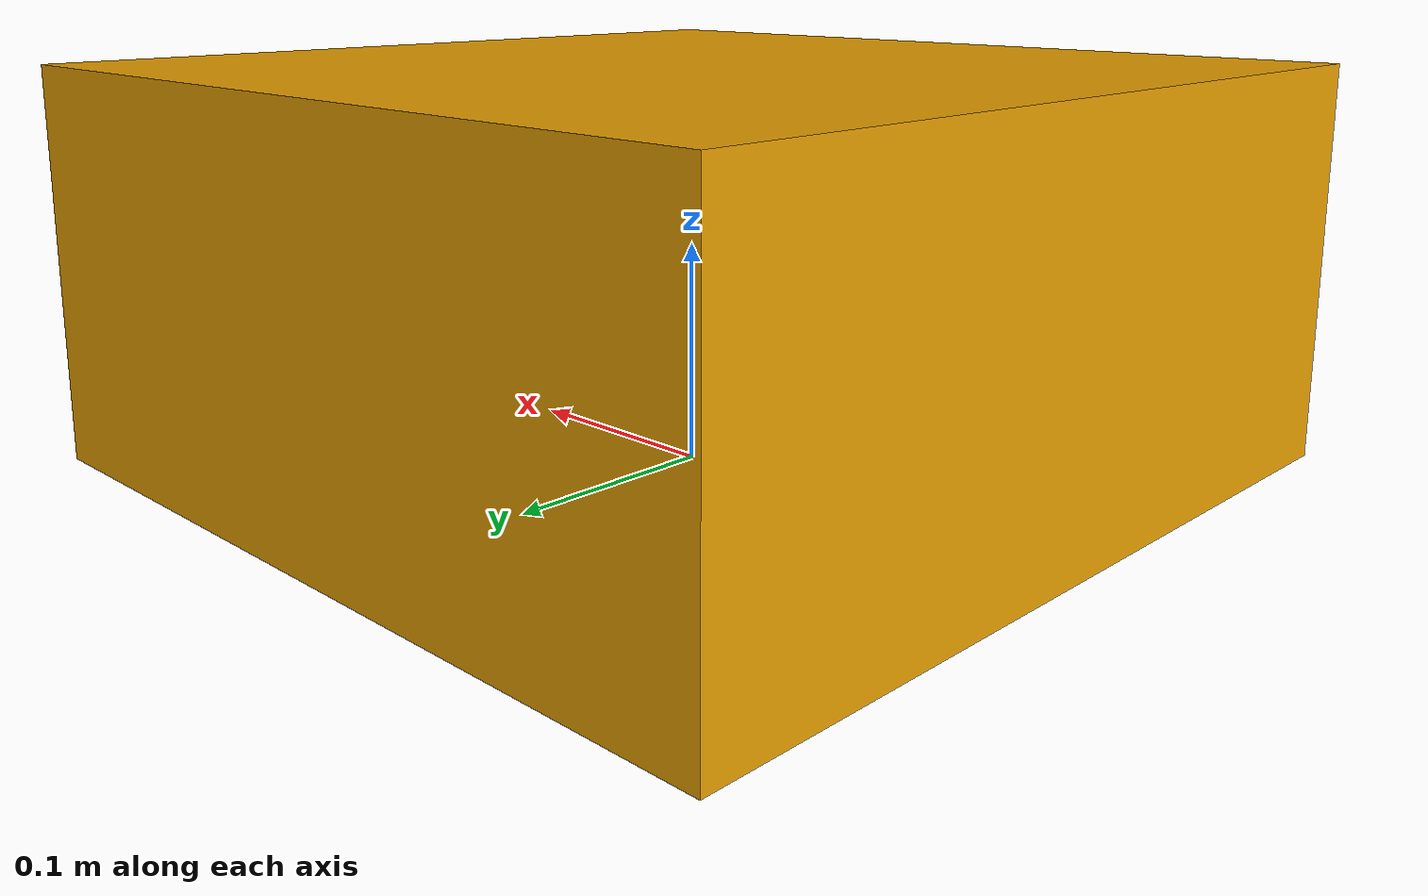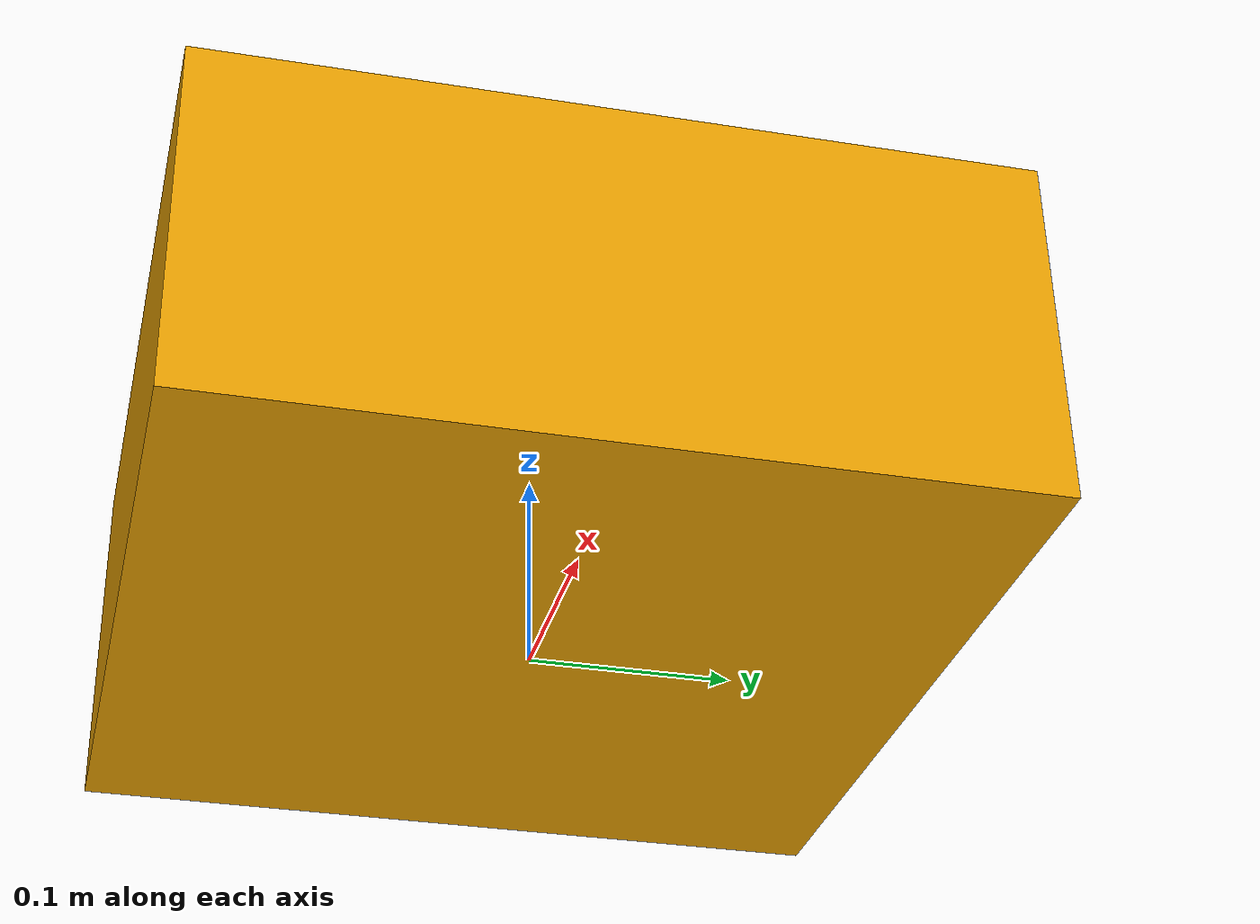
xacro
<?xml version="1.0"?>
<robot xmlns:xacro="http://www.ros.org/wiki/xacro" name="nz2_robot">

  <!-- 차체 치수 [m] -->
  <xacro:property name="body_size_x" value="0.4"/>      <!-- 400mm (규정 한계와 같음, TODO: 실측) -->
  <xacro:property name="body_size_y" value="0.4"/>      <!-- 400mm (TODO: 실측) -->
  <xacro:property name="body_height" value="0.18"/>     <!-- 상면 높이 (TODO: 실측/설계값) -->
  <!-- 스월브 모듈 장착 위치 (차체 중심 기준) -->
  <xacro:property name="module_offset_x" value="0.15"/> <!-- TODO: 설계값 -->
  <xacro:property name="module_offset_y" value="0.15"/> <!-- TODO: 설계값 -->
  <!-- 팔 장착 위치 -->
  <xacro:property name="arm_mount_x" value="0.0"/>      <!-- TODO: 실물에서 장착 위치 확인 -->

  <xacro:include filename="$(find nz2_description)/urdf/swerve.xacro"/>
  <xacro:include filename="$(find nz2_description)/urdf/arm.xacro"/>

  <link name="base_link">
    <visual>
      <origin xyz="0 0 ${body_height / 2}"/>
      <geometry>
        <box size="${body_size_x} ${body_size_y} ${body_height}"/>
      </geometry>
    </visual>
  </link>

  <!-- 스월브 4모듈: FL, FR, RL, RR -->
  <xacro:swerve_module prefix="fl" x="${module_offset_x}" y="${module_offset_y}"/>
  <xacro:swerve_module prefix="fr" x="${module_offset_x}" y="${-module_offset_y}"/>
  <xacro:swerve_module prefix="rl" x="${-module_offset_x}" y="${module_offset_y}"/>
  <xacro:swerve_module prefix="rr" x="${-module_offset_x}" y="${-module_offset_y}"/>

  <!-- 로봇팔: 차체 상면에 장착 -->
  <xacro:nz2_arm parent="base_link" x="${arm_mount_x}" z="${body_height}"/>

</robot>

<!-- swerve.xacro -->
<robot xmlns:xacro="http://www.ros.org/wiki/xacro">

  <xacro:property name="wheel_radius" value="0.033"/>  <!-- 지름 66mm -->
  <xacro:property name="wheel_width" value="0.02"/>    <!-- TODO: 실측 -->
  <xacro:property name="steer_limit" value="${pi / 2}"/>

  <xacro:macro name="swerve_module" params="prefix x y">
    <!-- 조향 관절: 차체 ↔ 모듈 (세로축 회전) -->
    <link name="${prefix}_steer_link"/>
    <joint name="${prefix}_steer_joint" type="revolute">
      <parent link="base_link"/>
      <child link="${prefix}_steer_link"/>
      <origin xyz="${x} ${y} ${wheel_radius}"/>
      <axis xyz="0 0 1"/>
      <limit lower="${-steer_limit}" upper="${steer_limit}" effort="1.0" velocity="1.0"/> <!-- TODO: effort·velocity -->
    </joint>

    <!-- 구동 관절: 모듈 ↔ 바퀴 (가로축 회전) -->
    <link name="${prefix}_wheel_link">
      <visual>
        <origin rpy="${pi / 2} 0 0"/>
        <geometry>
          <cylinder radius="${wheel_radius}" length="${wheel_width}"/>
        </geometry>
      </visual>
    </link>
    <joint name="${prefix}_wheel_joint" type="continuous">
      <parent link="${prefix}_steer_link"/>
      <child link="${prefix}_wheel_link"/>
      <axis xyz="0 1 0"/>
    </joint>
  </xacro:macro>

</robot>

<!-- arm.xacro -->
<robot xmlns:xacro="http://www.ros.org/wiki/xacro">

  <!-- 링크 길이 [m] (TODO: 실측/설계값) -->
  <xacro:property name="base_to_joint2" value="0.077"/>
  <xacro:property name="link1_length" value="0.0"/>   <!-- joint2 → joint3 (연장 반영, TODO) -->
  <xacro:property name="link2_length" value="0.0"/>   <!-- joint3 → joint4 (연장 반영, TODO) -->
  <xacro:property name="wrist_length" value="0.0"/>   <!-- joint4 → 손목 롤 (TODO) -->
  <xacro:property name="gripper_length" value="0.0"/> <!-- 손목 롤 → 집게 끝 (TODO) -->
  <xacro:property name="joint_limit" value="${pi}"/>  <!-- TODO: arm_params.yaml과 맞추기 -->

  <xacro:macro name="arm_joint" params="name parent child xyz axis">
    <link name="${child}"/>
    <joint name="${name}" type="revolute">
      <parent link="${parent}"/>
      <child link="${child}"/>
      <origin xyz="${xyz}"/>
      <axis xyz="${axis}"/>
      <limit lower="${-joint_limit}" upper="${joint_limit}" effort="1.0" velocity="1.0"/> <!-- TODO -->
    </joint>
  </xacro:macro>

  <xacro:macro name="nz2_arm" params="parent x z">
    <link name="arm_base_link"/>
    <joint name="arm_base_joint" type="fixed">
      <parent link="${parent}"/>
      <child link="arm_base_link"/>
      <origin xyz="${x} 0 ${z}"/>
    </joint>

    <xacro:arm_joint name="joint1" parent="arm_base_link" child="arm_link1" xyz="0 0 0" axis="0 0 1"/>
    <xacro:arm_joint name="joint2" parent="arm_link1" child="arm_link2" xyz="0 0 ${base_to_joint2}" axis="0 1 0"/>
    <xacro:arm_joint name="joint3" parent="arm_link2" child="arm_link3" xyz="0 0 ${link1_length}" axis="0 1 0"/>
    <xacro:arm_joint name="joint4" parent="arm_link3" child="arm_link4" xyz="${link2_length} 0 0" axis="0 1 0"/>
    <!-- 손목 롤 (추가 관절): 집게 중심선 둘레 회전 -->
    <xacro:arm_joint name="joint5_wrist_roll" parent="arm_link4" child="arm_link5" xyz="${wrist_length} 0 0" axis="1 0 0"/>

    <link name="gripper_link"/>
    <joint name="gripper_joint" type="fixed">
      <parent link="arm_link5"/>
      <child link="gripper_link"/>
      <origin xyz="${gripper_length} 0 0"/>
    </joint>

    <!-- 집게 상부 카메라 프레임 (TODO: 장착 위치·각도) -->
    <link name="gripper_camera_link"/>
    <joint name="gripper_camera_joint" type="fixed">
      <parent link="arm_link5"/>
      <child link="gripper_camera_link"/>
      <origin xyz="0 0 0" rpy="0 0 0"/>
    </joint>
  </xacro:macro>

</robot>
